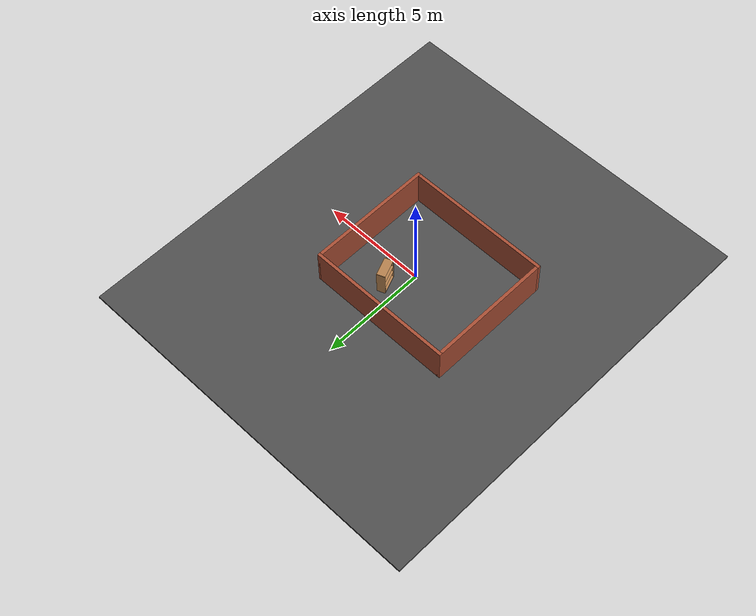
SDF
<sdf version="1.7">
 <world name="default">
  <light name="sun" type="directional">
   <pose>0 0 10 0 -0 0</pose>
   <diffuse>0.8 0.8 0.8 1</diffuse>
   <specular>0.2 0.2 0.2 1</specular>
   <attenuation>
    <range>1000</range>
    <constant>0.9</constant>
    <linear>0.01</linear>
    <quadratic>0.001</quadratic>
   </attenuation>
   <direction>-0.5 0.1 -0.9</direction>
   <spot><inner_angle>0</inner_angle><outer_angle>0</outer_angle><falloff>0</falloff></spot>
  </light>
  <gravity>0 0 -9.8</gravity>
  <magnetic_field>6e-06 2.3e-05 -4.2e-05</magnetic_field>
  <atmosphere type="adiabatic"/>
  <physics type="ode">
   <max_step_size>0.001</max_step_size>
   <real_time_factor>1</real_time_factor>
   <real_time_update_rate>1000</real_time_update_rate>
  </physics>
  <scene><ambient>0.4 0.4 0.4 1</ambient><background>0.7 0.7 0.7 1</background><shadows>1</shadows></scene>
  <spherical_coordinates>
   <surface_model>EARTH_WGS84</surface_model>
   <latitude_deg>0</latitude_deg>
   <longitude_deg>0</longitude_deg>
   <elevation>0</elevation>
   <heading_deg>0</heading_deg>
  </spherical_coordinates>
  <model name="asphalt_plane">
   <static>1</static>
   <link name="link">
    <collision name="collision"><geometry><box><size>17.655 20 0.1</size></box></geometry></collision>
    <visual name="visual">
     <cast_shadows>0</cast_shadows>
     <geometry><box><size>17.655 20 0.1</size></box></geometry>
     <material>
      <script>
       <uri>model://asphalt_plane/materials/scripts</uri>
       <uri>model://asphalt_plane/materials/textures</uri>
       <name>vrc/asphalt</name>
      </script>
     </material>
    </visual>
   </link>
   <pose>-0.00366 -0.010847 0 0 -0 0</pose>
  </model>
  <model name="bookshelf">
   <static>1</static>
   <link name="link">
    <inertial><mass>1</mass></inertial>
    <collision name="back">
     <pose>0 0.005 0.6 0 -0 0</pose>
     <geometry><box><size>0.9 0.01 1.2</size></box></geometry>
    </collision>
    <visual name="visual1">
     <pose>0 0.005 0.6 0 -0 0</pose>
     <geometry><box><size>0.9 0.01 1.2</size></box></geometry>
     <material>
      <script><uri>file://media/materials/scripts/gazebo.material</uri><name>Gazebo/Wood</name></script>
     </material>
    </visual>
    <collision name="left_side">
     <pose>0.45 -0.195 0.6 0 -0 0</pose>
     <geometry><box><size>0.02 0.4 1.2</size></box></geometry>
    </collision>
    <visual name="visual2">
     <pose>0.45 -0.195 0.6 0 -0 0</pose>
     <geometry><box><size>0.02 0.4 1.2</size></box></geometry>
     <material>
      <script><uri>file://media/materials/scripts/gazebo.material</uri><name>Gazebo/Wood</name></script>
     </material>
    </visual>
    <collision name="right_side">
     <pose>-0.45 -0.195 0.6 0 -0 0</pose>
     <geometry><box><size>0.02 0.4 1.2</size></box></geometry>
    </collision>
    <visual name="visual3">
     <pose>-0.45 -0.195 0.6 0 -0 0</pose>
     <geometry><box><size>0.02 0.4 1.2</size></box></geometry>
     <material>
      <script><uri>file://media/materials/scripts/gazebo.material</uri><name>Gazebo/Wood</name></script>
     </material>
    </visual>
    <collision name="bottom">
     <pose>0 -0.195 0.03 0 -0 0</pose>
     <geometry><box><size>0.88 0.4 0.06</size></box></geometry>
    </collision>
    <visual name="visual4">
     <pose>0 -0.195 0.03 0 -0 0</pose>
     <geometry><box><size>0.88 0.4 0.06</size></box></geometry>
     <material>
      <script><uri>file://media/materials/scripts/gazebo.material</uri><name>Gazebo/Wood</name></script>
     </material>
    </visual>
    <collision name="top">
     <pose>0 -0.195 1.19 0 -0 0</pose>
     <geometry><box><size>0.88 0.4 0.02</size></box></geometry>
    </collision>
    <visual name="visual5">
     <pose>0 -0.195 1.19 0 -0 0</pose>
     <geometry><box><size>0.88 0.4 0.02</size></box></geometry>
     <material>
      <script><uri>file://media/materials/scripts/gazebo.material</uri><name>Gazebo/Wood</name></script>
     </material>
    </visual>
    <collision name="low_shelf">
     <pose>0 -0.195 0.43 0 -0 0</pose>
     <geometry><box><size>0.88 0.4 0.02</size></box></geometry>
    </collision>
    <visual name="visual6">
     <pose>0 -0.195 0.43 0 -0 0</pose>
     <geometry><box><size>0.88 0.4 0.02</size></box></geometry>
     <material>
      <script><uri>file://media/materials/scripts/gazebo.material</uri><name>Gazebo/Wood</name></script>
     </material>
    </visual>
    <collision name="high_shelf">
     <pose>0 -0.195 0.8 0 -0 0</pose>
     <geometry><box><size>0.88 0.4 0.02</size></box></geometry>
    </collision>
    <visual name="visual7">
     <pose>0 -0.195 0.8 0 -0 0</pose>
     <geometry><box><size>0.88 0.4 0.02</size></box></geometry>
     <material>
      <script><uri>file://media/materials/scripts/gazebo.material</uri><name>Gazebo/Wood</name></script>
     </material>
    </visual>
   </link>
   <pose>0.854903 1.22581 0.05 0 0 -1.18732</pose>
  </model>
  <model name="closed_room_6x7">
   <pose>-0.641888 -1.54299 0 0 -0 0</pose>
   <link name="Wall_1">
    <collision name="Wall_1_Collision">
     <geometry><box><size>7 0.15 1.8</size></box></geometry>
     <pose>0 0 0.9 0 -0 0</pose>
    </collision>
    <visual name="Wall_1_Visual">
     <pose>0 0 0.9 0 -0 0</pose>
     <geometry><box><size>7 0.15 1.8</size></box></geometry>
     <material>
      <script><uri>file://media/materials/scripts/gazebo.material</uri><name>Gazebo/Bricks</name></script>
      <ambient>1 1 1 1</ambient>
     </material>
     <meta><layer>0</layer></meta>
    </visual>
    <pose>0 4.3705 0 0 -0 0</pose>
   </link>
   <link name="Wall_2">
    <collision name="Wall_2_Collision">
     <geometry><box><size>6 0.15 1.8</size></box></geometry>
     <pose>0 0 0.9 0 -0 0</pose>
    </collision>
    <visual name="Wall_2_Visual">
     <pose>0 0 0.9 0 -0 0</pose>
     <geometry><box><size>6 0.15 1.8</size></box></geometry>
     <material>
      <script><uri>file://media/materials/scripts/gazebo.material</uri><name>Gazebo/Bricks</name></script>
      <ambient>1 1 1 1</ambient>
     </material>
     <meta><layer>0</layer></meta>
    </visual>
    <pose>3.425 1.4455 0 0 -0 -1.5708</pose>
   </link>
   <link name="Wall_3">
    <collision name="Wall_3_Collision">
     <geometry><box><size>7 0.15 1.8</size></box></geometry>
     <pose>0 0 0.9 0 -0 0</pose>
    </collision>
    <visual name="Wall_3_Visual">
     <pose>0 0 0.9 0 -0 0</pose>
     <geometry><box><size>7 0.15 1.8</size></box></geometry>
     <material>
      <script><uri>file://media/materials/scripts/gazebo.material</uri><name>Gazebo/Bricks</name></script>
      <ambient>1 1 1 1</ambient>
     </material>
     <meta><layer>0</layer></meta>
    </visual>
    <pose>0 -1.4795 0 0 -0 3.14159</pose>
   </link>
   <link name="Wall_4">
    <collision name="Wall_4_Collision">
     <geometry><box><size>6 0.15 1.8</size></box></geometry>
     <pose>0 0 0.9 0 -0 0</pose>
    </collision>
    <visual name="Wall_4_Visual">
     <pose>0 0 0.9 0 -0 0</pose>
     <geometry><box><size>6 0.15 1.8</size></box></geometry>
     <material>
      <script><uri>file://media/materials/scripts/gazebo.material</uri><name>Gazebo/Bricks</name></script>
      <ambient>1 1 1 1</ambient>
     </material>
     <meta><layer>0</layer></meta>
    </visual>
    <pose>-3.425 1.4455 0 0 -0 1.5708</pose>
   </link>
   <static>1</static>
  </model>
 </world>
</sdf>
